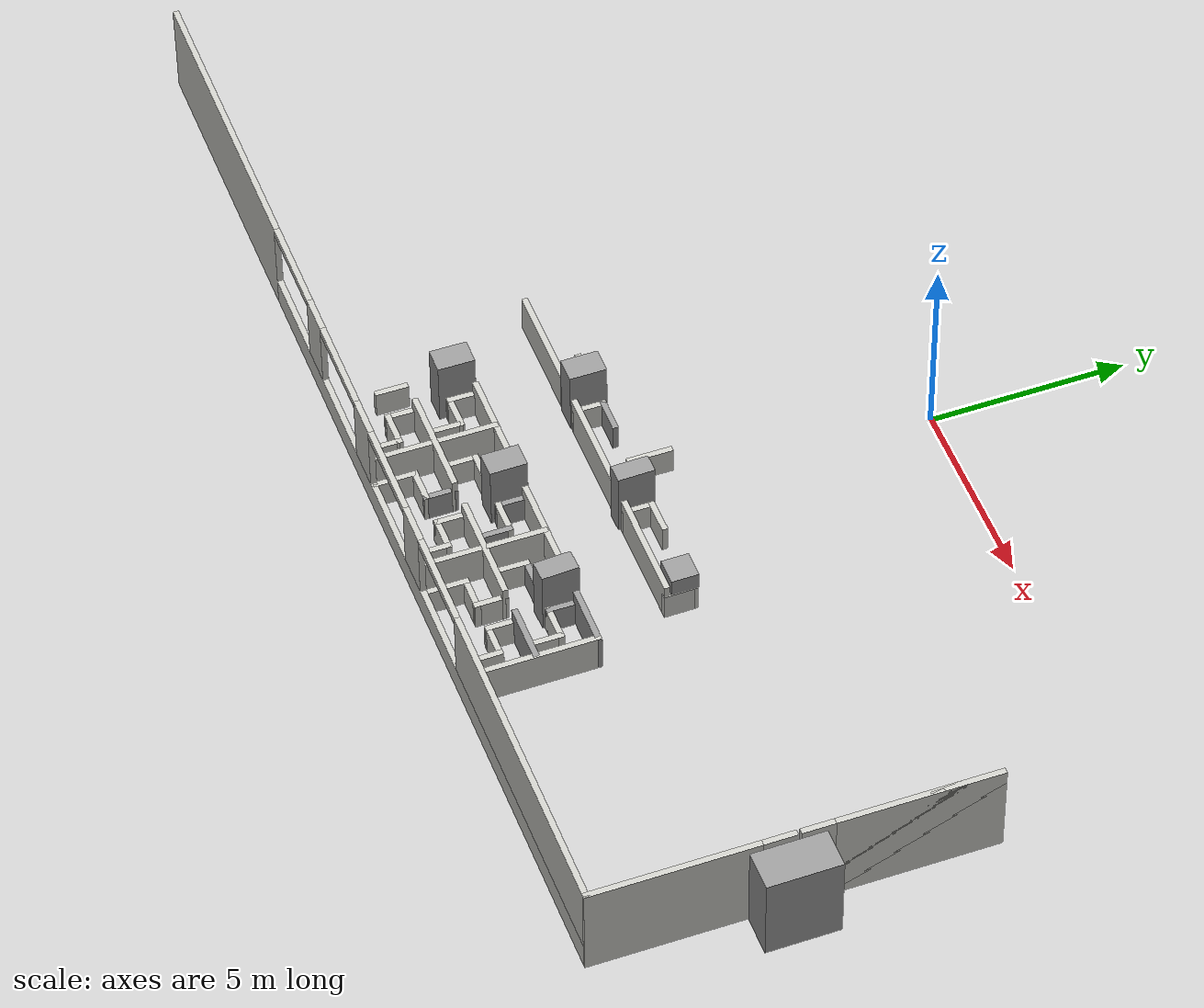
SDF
<sdf version="1.7">
 <world name="default">
  <model name="ground_plane">
   <static>1</static>
   <link name="link">
    <collision name="collision">
     <geometry><plane><normal>0 0 1</normal><size>100 100</size></plane></geometry>
     <surface><friction><ode><mu>100</mu><mu2>50</mu2></ode></friction></surface>
    </collision>
    <visual name="visual">
     <cast_shadows>0</cast_shadows>
     <geometry><plane><normal>0 0 1</normal><size>100 100</size></plane></geometry>
     <material>
      <script><uri>file://media/materials/scripts/gazebo.material</uri><name>Gazebo/Grey</name></script>
     </material>
    </visual>
   </link>
  </model>
  <model name="batclab">
   <pose>-2.42536 -0.386876 0 0 -0 0</pose>
   <link name="Wall_104">
    <collision name="Wall_104_Collision">
     <geometry><box><size>2.865 0.15 1</size></box></geometry>
     <pose>0 0 0.5 0 -0 0</pose>
    </collision>
    <visual name="Wall_104_Visual">
     <pose>0 0 0.5 0 -0 0</pose>
     <geometry><box><size>2.865 0.15 1</size></box></geometry>
     <material>
      <script><uri>file://media/materials/scripts/gazebo.material</uri><name>Gazebo/CeilingTiled</name></script>
      <ambient>1 1 1 1</ambient>
     </material>
     <meta><layer>0</layer></meta>
    </visual>
    <pose>-2.41702 -7.65761 0 0 -0 0</pose>
   </link>
   <link name="Wall_129">
    <collision name="Wall_129_Collision">
     <geometry><box><size>0.960743 0.15 0.7</size></box></geometry>
     <pose>0 0 0.35 0 -0 0</pose>
    </collision>
    <visual name="Wall_129_Visual">
     <pose>0 0 0.35 0 -0 0</pose>
     <geometry><box><size>0.960743 0.15 0.7</size></box></geometry>
     <material>
      <script><uri>file://media/materials/scripts/gazebo.material</uri><name>Gazebo/CeilingTiled</name></script>
      <ambient>1 1 1 1</ambient>
     </material>
     <meta><layer>0</layer></meta>
    </visual>
    <pose>-1.46492 -6.99011 0 0 -0 0.003699</pose>
   </link>
   <link name="Wall_130">
    <collision name="Wall_130_Collision">
     <geometry><box><size>0.819914 0.15 0.7</size></box></geometry>
     <pose>0 0 0.35 0 -0 0</pose>
    </collision>
    <visual name="Wall_130_Visual">
     <pose>0 0 0.35 0 -0 0</pose>
     <geometry><box><size>0.819914 0.15 0.7</size></box></geometry>
     <material>
      <script><uri>file://media/materials/scripts/gazebo.material</uri><name>Gazebo/CeilingTiled</name></script>
      <ambient>1 1 1 1</ambient>
     </material>
     <meta><layer>0</layer></meta>
    </visual>
    <pose>-1.05942 -7.32361 0 0 -0 -1.5708</pose>
   </link>
   <link name="Wall_162">
    <collision name="Wall_162_Collision">
     <geometry><box><size>2.865 0.15 1</size></box></geometry>
     <pose>0 0 0.5 0 -0 0</pose>
    </collision>
    <visual name="Wall_162_Visual">
     <pose>0 0 0.5 0 -0 0</pose>
     <geometry><box><size>2.865 0.15 1</size></box></geometry>
     <material>
      <script><uri>file://media/materials/scripts/gazebo.material</uri><name>Gazebo/CeilingTiled</name></script>
      <ambient>1 1 1 1</ambient>
     </material>
     <meta><layer>0</layer></meta>
    </visual>
    <pose>1.09927 -7.67229 0 0 -0 0</pose>
   </link>
   <link name="Wall_164">
    <collision name="Wall_164_Collision">
     <geometry><box><size>2.865 0.15 1</size></box></geometry>
     <pose>0 0 0.5 0 -0 0</pose>
    </collision>
    <visual name="Wall_164_Visual">
     <pose>0 0 0.5 0 -0 0</pose>
     <geometry><box><size>2.865 0.15 1</size></box></geometry>
     <material>
      <script><uri>file://media/materials/scripts/gazebo.material</uri><name>Gazebo/CeilingTiled</name></script>
      <ambient>1 1 1 1</ambient>
     </material>
     <meta><layer>0</layer></meta>
    </visual>
    <pose>4.51204 -7.67926 0 0 -0 0</pose>
   </link>
   <link name="Wall_2">
    <pose>-0.019036 -12.8991 0 0 -0 0.000904</pose>
    <visual name="Wall_2_Visual_0">
     <pose>-10.7722 0 1.25 0 -0 0</pose>
     <geometry><box><size>8.04394 0.15 2.5</size></box></geometry>
     <material>
      <script><uri>file://media/materials/scripts/gazebo.material</uri><name>Gazebo/CeilingTiled</name></script>
      <ambient>1 1 1 1</ambient>
     </material>
     <meta><layer>0</layer></meta>
    </visual>
    <collision name="Wall_2_Collision_0">
     <geometry><box><size>8.04394 0.15 2.5</size></box></geometry>
     <pose>-10.7722 0 1.25 0 -0 0</pose>
    </collision>
    <visual name="Wall_2_Visual_1">
     <pose>4.02197 0 0.35 0 -0 0</pose>
     <geometry><box><size>21.5443 0.15 0.7</size></box></geometry>
     <material>
      <script><uri>file://media/materials/scripts/gazebo.material</uri><name>Gazebo/CeilingTiled</name></script>
      <ambient>1 1 1 1</ambient>
     </material>
     <meta><layer>0</layer></meta>
    </visual>
    <collision name="Wall_2_Collision_1">
     <geometry><box><size>21.5443 0.15 0.7</size></box></geometry>
     <pose>4.02197 0 0.35 0 -0 0</pose>
    </collision>
    <visual name="Wall_2_Visual_2">
     <pose>-3.76368 0 1.6 0 -0 0</pose>
     <geometry><box><size>0.973009 0.15 1.8</size></box></geometry>
     <material>
      <script><uri>file://media/materials/scripts/gazebo.material</uri><name>Gazebo/CeilingTiled</name></script>
      <ambient>1 1 1 1</ambient>
     </material>
     <meta><layer>0</layer></meta>
    </visual>
    <collision name="Wall_2_Collision_2">
     <geometry><box><size>0.973009 0.15 1.8</size></box></geometry>
     <pose>-3.76368 0 1.6 0 -0 0</pose>
    </collision>
    <visual name="Wall_2_Visual_3">
     <pose>-0.257602 0 1.6 0 -0 0</pose>
     <geometry><box><size>1.03915 0.15 1.8</size></box></geometry>
     <material>
      <script><uri>file://media/materials/scripts/gazebo.material</uri><name>Gazebo/CeilingTiled</name></script>
      <ambient>1 1 1 1</ambient>
     </material>
     <meta><layer>0</layer></meta>
    </visual>
    <collision name="Wall_2_Collision_3">
     <geometry><box><size>1.03915 0.15 1.8</size></box></geometry>
     <pose>-0.257602 0 1.6 0 -0 0</pose>
    </collision>
    <visual name="Wall_2_Visual_4">
     <pose>3.28588 0 1.6 0 -0 0</pose>
     <geometry><box><size>1.04782 0.15 1.8</size></box></geometry>
     <material>
      <script><uri>file://media/materials/scripts/gazebo.material</uri><name>Gazebo/CeilingTiled</name></script>
      <ambient>1 1 1 1</ambient>
     </material>
     <meta><layer>0</layer></meta>
    </visual>
    <collision name="Wall_2_Collision_4">
     <geometry><box><size>1.04782 0.15 1.8</size></box></geometry>
     <pose>3.28588 0 1.6 0 -0 0</pose>
    </collision>
    <visual name="Wall_2_Visual_5">
     <pose>10.552 0 1.6 0 -0 0</pose>
     <geometry><box><size>8.48433 0.15 1.8</size></box></geometry>
     <material>
      <script><uri>file://media/materials/scripts/gazebo.material</uri><name>Gazebo/CeilingTiled</name></script>
      <ambient>1 1 1 1</ambient>
     </material>
     <meta><layer>0</layer></meta>
    </visual>
    <collision name="Wall_2_Collision_5">
     <geometry><box><size>8.48433 0.15 1.8</size></box></geometry>
     <pose>10.552 0 1.6 0 -0 0</pose>
    </collision>
    <visual name="Wall_2_Visual_6">
     <pose>-5.50019 0 2.4 0 -0 0</pose>
     <geometry><box><size>2.5 0.15 0.2</size></box></geometry>
     <material>
      <script><uri>file://media/materials/scripts/gazebo.material</uri><name>Gazebo/CeilingTiled</name></script>
      <ambient>1 1 1 1</ambient>
     </material>
     <meta><layer>0</layer></meta>
    </visual>
    <collision name="Wall_2_Collision_6">
     <geometry><box><size>2.5 0.15 0.2</size></box></geometry>
     <pose>-5.50019 0 2.4 0 -0 0</pose>
    </collision>
    <visual name="Wall_2_Visual_7">
     <pose>-2.02718 0 2.4 0 -0 0</pose>
     <geometry><box><size>2.5 0.15 0.2</size></box></geometry>
     <material>
      <script><uri>file://media/materials/scripts/gazebo.material</uri><name>Gazebo/CeilingTiled</name></script>
      <ambient>1 1 1 1</ambient>
     </material>
     <meta><layer>0</layer></meta>
    </visual>
    <collision name="Wall_2_Collision_7">
     <geometry><box><size>2.5 0.15 0.2</size></box></geometry>
     <pose>-2.02718 0 2.4 0 -0 0</pose>
    </collision>
    <visual name="Wall_2_Visual_8">
     <pose>1.51197 0 2.4 0 -0 0</pose>
     <geometry><box><size>2.5 0.15 0.2</size></box></geometry>
     <material>
      <script><uri>file://media/materials/scripts/gazebo.material</uri><name>Gazebo/CeilingTiled</name></script>
      <ambient>1 1 1 1</ambient>
     </material>
     <meta><layer>0</layer></meta>
    </visual>
    <collision name="Wall_2_Collision_8">
     <geometry><box><size>2.5 0.15 0.2</size></box></geometry>
     <pose>1.51197 0 2.4 0 -0 0</pose>
    </collision>
    <visual name="Wall_2_Visual_9">
     <pose>5.05979 0 2.4 0 -0 0</pose>
     <geometry><box><size>2.5 0.15 0.2</size></box></geometry>
     <material>
      <script><uri>file://media/materials/scripts/gazebo.material</uri><name>Gazebo/CeilingTiled</name></script>
      <ambient>1 1 1 1</ambient>
     </material>
     <meta><layer>0</layer></meta>
    </visual>
    <collision name="Wall_2_Collision_9">
     <geometry><box><size>2.5 0.15 0.2</size></box></geometry>
     <pose>5.05979 0 2.4 0 -0 0</pose>
    </collision>
   </link>
   <link name="Wall_219">
    <collision name="Wall_219_Collision">
     <geometry><box><size>0.92819 0.15 0.7</size></box></geometry>
     <pose>0 0 0.35 0 -0 0</pose>
    </collision>
    <visual name="Wall_219_Visual">
     <pose>0 0 0.35 0 -0 0</pose>
     <geometry><box><size>0.92819 0.15 0.7</size></box></geometry>
     <material>
      <script><uri>file://media/materials/scripts/gazebo.material</uri><name>Gazebo/Grey</name></script>
      <ambient>1 1 1 1</ambient>
     </material>
     <meta><layer>0</layer></meta>
    </visual>
    <pose>0.13958 -6.96361 0 0 -0 3.13645</pose>
   </link>
   <link name="Wall_220">
    <collision name="Wall_220_Collision">
     <geometry><box><size>0.860758 0.15 0.7</size></box></geometry>
     <pose>0 0 0.35 0 -0 0</pose>
    </collision>
    <visual name="Wall_220_Visual">
     <pose>0 0 0.35 0 -0 0</pose>
     <geometry><box><size>0.860758 0.15 0.7</size></box></geometry>
     <material>
      <script><uri>file://media/materials/scripts/gazebo.material</uri><name>Gazebo/CeilingTiled</name></script>
      <ambient>1 1 1 1</ambient>
     </material>
     <meta><layer>0</layer></meta>
    </visual>
    <pose>-0.25142 -7.31711 0 0 -0 -1.57642</pose>
   </link>
   <link name="Wall_222">
    <collision name="Wall_222_Collision">
     <geometry><box><size>1.14201 0.15 0.7</size></box></geometry>
     <pose>0 0 0.35 0 -0 0</pose>
    </collision>
    <visual name="Wall_222_Visual">
     <pose>0 0 0.35 0 -0 0</pose>
     <geometry><box><size>1.14201 0.15 0.7</size></box></geometry>
     <material>
      <script><uri>file://media/materials/scripts/gazebo.material</uri><name>Gazebo/CeilingTiled</name></script>
      <ambient>1 1 1 1</ambient>
     </material>
     <meta><layer>0</layer></meta>
    </visual>
    <pose>1.68458 -6.51461 0 0 -0 -1.57483</pose>
   </link>
   <link name="Wall_223">
    <collision name="Wall_223_Collision">
     <geometry><box><size>0.95454 0.15 0.7</size></box></geometry>
     <pose>0 0 0.35 0 -0 0</pose>
    </collision>
    <visual name="Wall_223_Visual">
     <pose>0 0 0.35 0 -0 0</pose>
     <geometry><box><size>0.95454 0.15 0.7</size></box></geometry>
     <material>
      <script><uri>file://media/materials/scripts/gazebo.material</uri><name>Gazebo/CeilingTiled</name></script>
      <ambient>1 1 1 1</ambient>
     </material>
     <meta><layer>0</layer></meta>
    </visual>
    <pose>2.08508 -7.01261 0 0 -0 -0.004969</pose>
   </link>
   <link name="Wall_224">
    <collision name="Wall_224_Collision">
     <geometry><box><size>0.81161 0.15 0.7</size></box></geometry>
     <pose>0 0 0.35 0 -0 0</pose>
    </collision>
    <visual name="Wall_224_Visual">
     <pose>0 0 0.35 0 -0 0</pose>
     <geometry><box><size>0.81161 0.15 0.7</size></box></geometry>
     <material>
      <script><uri>file://media/materials/scripts/gazebo.material</uri><name>Gazebo/CeilingTiled</name></script>
      <ambient>1 1 1 1</ambient>
     </material>
     <meta><layer>0</layer></meta>
    </visual>
    <pose>2.48158 -7.34561 0 0 -0 -1.58892</pose>
   </link>
   <link name="Wall_227">
    <collision name="Wall_227_Collision">
     <geometry><box><size>0.924439 0.15 0.7</size></box></geometry>
     <pose>0 0 0.35 0 -0 0</pose>
    </collision>
    <visual name="Wall_227_Visual">
     <pose>0 0 0.35 0 -0 0</pose>
     <geometry><box><size>0.924439 0.15 0.7</size></box></geometry>
     <material>
      <script><uri>file://media/materials/scripts/gazebo.material</uri><name>Gazebo/CeilingTiled</name></script>
      <ambient>1 1 1 1</ambient>
     </material>
     <meta><layer>0</layer></meta>
    </visual>
    <pose>3.53958 -6.99911 0 0 -0 -3.13255</pose>
   </link>
   <link name="Wall_228">
    <collision name="Wall_228_Collision">
     <geometry><box><size>0.827113 0.15 0.7</size></box></geometry>
     <pose>0 0 0.35 0 -0 0</pose>
    </collision>
    <visual name="Wall_228_Visual">
     <pose>0 0 0.35 0 -0 0</pose>
     <geometry><box><size>0.827113 0.15 0.7</size></box></geometry>
     <material>
      <script><uri>file://media/materials/scripts/gazebo.material</uri><name>Gazebo/CeilingTiled</name></script>
      <ambient>1 1 1 1</ambient>
     </material>
     <meta><layer>0</layer></meta>
    </visual>
    <pose>3.15458 -7.34111 0 0 -0 -1.56489</pose>
   </link>
   <link name="Wall_231">
    <collision name="Wall_231_Collision">
     <geometry><box><size>0.954505 0.15 0.7</size></box></geometry>
     <pose>0 0 0.35 0 -0 0</pose>
    </collision>
    <visual name="Wall_231_Visual">
     <pose>0 0 0.35 0 -0 0</pose>
     <geometry><box><size>0.954505 0.15 0.7</size></box></geometry>
     <material>
      <script><uri>file://media/materials/scripts/gazebo.material</uri><name>Gazebo/CeilingTiled</name></script>
      <ambient>1 1 1 1</ambient>
     </material>
     <meta><layer>0</layer></meta>
    </visual>
    <pose>5.47958 -6.98761 0 0 -0 0</pose>
   </link>
   <link name="Wall_233">
    <collision name="Wall_233_Collision">
     <geometry><box><size>0.845575 0.15 0.7</size></box></geometry>
     <pose>0 0 0.35 0 -0 0</pose>
    </collision>
    <visual name="Wall_233_Visual">
     <pose>0 0 0.35 0 -0 0</pose>
     <geometry><box><size>0.845575 0.15 0.7</size></box></geometry>
     <material>
      <script><uri>file://media/materials/scripts/gazebo.material</uri><name>Gazebo/CeilingTiled</name></script>
      <ambient>1 1 1 1</ambient>
     </material>
     <meta><layer>0</layer></meta>
    </visual>
    <pose>5.88558 -7.33561 0 0 -0 -1.5593</pose>
   </link>
   <link name="Wall_3">
    <pose>14.7278 -7.97302 0 0 -0 1.5687</pose>
    <visual name="Wall_3_Visual_0">
     <pose>-2.88972 0 1.25 0 -0 0</pose>
     <geometry><box><size>4.19615 0.15 2.5</size></box></geometry>
     <material>
      <script><uri>file://media/materials/scripts/gazebo.material</uri><name>Gazebo/CeilingTiled</name></script>
      <ambient>1 1 1 1</ambient>
     </material>
     <meta><layer>0</layer></meta>
    </visual>
    <collision name="Wall_3_Collision_0">
     <geometry><box><size>4.19615 0.15 2.5</size></box></geometry>
     <pose>-2.88972 0 1.25 0 -0 0</pose>
    </collision>
    <visual name="Wall_3_Visual_1">
     <pose>2.54808 0 1.25 0 -0 0</pose>
     <geometry><box><size>4.87945 0.15 2.5</size></box></geometry>
     <material>
      <script><uri>file://media/materials/scripts/gazebo.material</uri><name>Gazebo/CeilingTiled</name></script>
      <ambient>1 1 1 1</ambient>
     </material>
     <meta><layer>0</layer></meta>
    </visual>
    <collision name="Wall_3_Collision_1">
     <geometry><box><size>4.87945 0.15 2.5</size></box></geometry>
     <pose>2.54808 0 1.25 0 -0 0</pose>
    </collision>
    <visual name="Wall_3_Visual_2">
     <pose>2.95765 0 1.25 0 -0 0</pose>
     <geometry><box><size>4.06029 0.15 2.5</size></box></geometry>
     <material>
      <script><uri>file://media/materials/scripts/gazebo.material</uri><name>Gazebo/CeilingTiled</name></script>
      <ambient>1 1 1 1</ambient>
     </material>
     <meta><layer>0</layer></meta>
    </visual>
    <collision name="Wall_3_Collision_2">
     <geometry><box><size>4.06029 0.15 2.5</size></box></geometry>
     <pose>2.95765 0 1.25 0 -0 0</pose>
    </collision>
    <visual name="Wall_3_Visual_3">
     <pose>-0.382072 0 2.25 0 -0 0</pose>
     <geometry><box><size>0.819154 0.15 0.5</size></box></geometry>
     <material>
      <script><uri>file://media/materials/scripts/gazebo.material</uri><name>Gazebo/CeilingTiled</name></script>
      <ambient>1 1 1 1</ambient>
     </material>
     <meta><layer>0</layer></meta>
    </visual>
    <collision name="Wall_3_Collision_3">
     <geometry><box><size>0.819154 0.15 0.5</size></box></geometry>
     <pose>-0.382072 0 2.25 0 -0 0</pose>
    </collision>
   </link>
   <link name="Wall_354">
    <collision name="Wall_354_Collision">
     <geometry><box><size>2.865 0.15 1</size></box></geometry>
     <pose>0 0 0.5 0 -0 0</pose>
    </collision>
    <visual name="Wall_354_Visual">
     <pose>0 0 0.5 0 -0 0</pose>
     <geometry><box><size>2.865 0.15 1</size></box></geometry>
     <material>
      <script><uri>file://media/materials/scripts/gazebo.material</uri><name>Gazebo/CeilingTiled</name></script>
      <ambient>1 1 1 1</ambient>
     </material>
     <meta><layer>0</layer></meta>
    </visual>
    <pose>-0.26892 -9.67561 0 0 -0 0</pose>
   </link>
   <link name="Wall_356">
    <collision name="Wall_356_Collision">
     <geometry><box><size>2.865 0.15 1</size></box></geometry>
     <pose>0 0 0.5 0 -0 0</pose>
    </collision>
    <visual name="Wall_356_Visual">
     <pose>0 0 0.5 0 -0 0</pose>
     <geometry><box><size>2.865 0.15 1</size></box></geometry>
     <material>
      <script><uri>file://media/materials/scripts/gazebo.material</uri><name>Gazebo/CeilingTiled</name></script>
      <ambient>1 1 1 1</ambient>
     </material>
     <meta><layer>0</layer></meta>
    </visual>
    <pose>-0.27292 -11.1946 0 0 -0 0.00221</pose>
   </link>
   <link name="Wall_358">
    <collision name="Wall_358_Collision">
     <geometry><box><size>2.86298 0.15 1</size></box></geometry>
     <pose>0 0 0.5 0 -0 0</pose>
    </collision>
    <visual name="Wall_358_Visual">
     <pose>0 0 0.5 0 -0 0</pose>
     <geometry><box><size>2.86298 0.15 1</size></box></geometry>
     <material>
      <script><uri>file://media/materials/scripts/gazebo.material</uri><name>Gazebo/CeilingTiled</name></script>
      <ambient>1 1 1 1</ambient>
     </material>
     <meta><layer>0</layer></meta>
    </visual>
    <pose>3.26308 -9.68661 0 0 -0 0</pose>
   </link>
   <link name="Wall_360">
    <collision name="Wall_360_Collision">
     <geometry><box><size>2.865 0.15 1</size></box></geometry>
     <pose>0 0 0.5 0 -0 0</pose>
    </collision>
    <visual name="Wall_360_Visual">
     <pose>0 0 0.5 0 -0 0</pose>
     <geometry><box><size>2.865 0.15 1</size></box></geometry>
     <material>
      <script><uri>file://media/materials/scripts/gazebo.material</uri><name>Gazebo/CeilingTiled</name></script>
      <ambient>1 1 1 1</ambient>
     </material>
     <meta><layer>0</layer></meta>
    </visual>
    <pose>3.26608 -11.1956 0 0 -0 0</pose>
   </link>
   <link name="Wall_362">
    <collision name="Wall_362_Collision">
     <geometry><box><size>1.5634 0.15 1</size></box></geometry>
     <pose>0 0 0.5 0 -0 0</pose>
    </collision>
    <visual name="Wall_362_Visual">
     <pose>0 0 0.5 0 -0 0</pose>
     <geometry><box><size>1.5634 0.15 1</size></box></geometry>
     <material>
      <script><uri>file://media/materials/scripts/gazebo.material</uri><name>Gazebo/Grey</name></script>
      <ambient>1 1 1 1</ambient>
     </material>
     <meta><layer>0</layer></meta>
    </visual>
    <pose>6.06208 -9.67811 0 0 -0 -0.003539</pose>
   </link>
   <link name="Wall_364">
    <collision name="Wall_364_Collision">
     <geometry><box><size>1.5 0.15 1</size></box></geometry>
     <pose>0 0 0.5 0 -0 0</pose>
    </collision>
    <visual name="Wall_364_Visual">
     <pose>0 0 0.5 0 -0 0</pose>
     <geometry><box><size>1.5 0.15 1</size></box></geometry>
     <material>
      <script><uri>file://media/materials/scripts/gazebo.material</uri><name>Gazebo/Grey</name></script>
      <ambient>1 1 1 1</ambient>
     </material>
     <meta><layer>0</layer></meta>
    </visual>
    <pose>6.05658 -11.1906 0 0 -0 0</pose>
   </link>
   <link name="Wall_366">
    <collision name="Wall_366_Collision">
     <geometry><box><size>3.25 0.15 1</size></box></geometry>
     <pose>0 0 0.5 0 -0 0</pose>
    </collision>
    <visual name="Wall_366_Visual">
     <pose>0 0 0.5 0 -0 0</pose>
     <geometry><box><size>3.25 0.15 1</size></box></geometry>
     <material>
      <script><uri>file://media/materials/scripts/gazebo.material</uri><name>Gazebo/CeilingTiled</name></script>
      <ambient>1 1 1 1</ambient>
     </material>
     <meta><layer>0</layer></meta>
    </visual>
    <pose>-0.24042 -11.2436 0 0 -0 -1.5708</pose>
   </link>
   <link name="Wall_368">
    <collision name="Wall_368_Collision">
     <geometry><box><size>3.25 0.15 1</size></box></geometry>
     <pose>0 0 0.5 0 -0 0</pose>
    </collision>
    <visual name="Wall_368_Visual">
     <pose>0 0 0.5 0 -0 0</pose>
     <geometry><box><size>3.25 0.15 1</size></box></geometry>
     <material>
      <script><uri>file://media/materials/scripts/gazebo.material</uri><name>Gazebo/CeilingTiled</name></script>
      <ambient>1 1 1 1</ambient>
     </material>
     <meta><layer>0</layer></meta>
    </visual>
    <pose>3.27258 -11.2606 0 0 -0 -1.5708</pose>
   </link>
   <link name="Wall_370">
    <collision name="Wall_370_Collision">
     <geometry><box><size>3.26203 0.15 1</size></box></geometry>
     <pose>0 0 0.5 0 -0 0</pose>
    </collision>
    <visual name="Wall_370_Visual">
     <pose>0 0 0.5 0 -0 0</pose>
     <geometry><box><size>3.26203 0.15 1</size></box></geometry>
     <material>
      <script><uri>file://media/materials/scripts/gazebo.material</uri><name>Gazebo/CeilingTiled</name></script>
      <ambient>1 1 1 1</ambient>
     </material>
     <meta><layer>0</layer></meta>
    </visual>
    <pose>6.77408 -11.2366 0 0 -0 -1.56726</pose>
   </link>
   <link name="Wall_378">
    <collision name="Wall_378_Collision">
     <geometry><box><size>0.808409 0.15 0.7</size></box></geometry>
     <pose>0 0 0.35 0 -0 0</pose>
    </collision>
    <visual name="Wall_378_Visual">
     <pose>0 0 0.35 0 -0 0</pose>
     <geometry><box><size>0.808409 0.15 0.7</size></box></geometry>
     <material>
      <script><uri>file://media/materials/scripts/gazebo.material</uri><name>Gazebo/CeilingTiled</name></script>
      <ambient>1 1 1 1</ambient>
     </material>
     <meta><layer>0</layer></meta>
    </visual>
    <pose>-2.43792 -10.0181 0 0 -0 -1.57535</pose>
   </link>
   <link name="Wall_386">
    <collision name="Wall_386_Collision">
     <geometry><box><size>0.835561 0.15 0.7</size></box></geometry>
     <pose>0 0 0.35 0 -0 0</pose>
    </collision>
    <visual name="Wall_386_Visual">
     <pose>0 0 0.35 0 -0 0</pose>
     <geometry><box><size>0.835561 0.15 0.7</size></box></geometry>
     <material>
      <script><uri>file://media/materials/scripts/gazebo.material</uri><name>Gazebo/CeilingTiled</name></script>
      <ambient>1 1 1 1</ambient>
     </material>
     <meta><layer>0</layer></meta>
    </visual>
    <pose>-2.44642 -11.5396 0 0 -0 -1.5708</pose>
   </link>
   <link name="Wall_390">
    <collision name="Wall_390_Collision">
     <geometry><box><size>0.82309 0.15 0.7</size></box></geometry>
     <pose>0 0 0.35 0 -0 0</pose>
    </collision>
    <visual name="Wall_390_Visual">
     <pose>0 0 0.35 0 -0 0</pose>
     <geometry><box><size>0.82309 0.15 0.7</size></box></geometry>
     <material>
      <script><uri>file://media/materials/scripts/gazebo.material</uri><name>Gazebo/CeilingTiled</name></script>
      <ambient>1 1 1 1</ambient>
     </material>
     <meta><layer>0</layer></meta>
    </visual>
    <pose>-1.63192 -10.0121 0 0 -0 -1.58714</pose>
   </link>
   <link name="Wall_391">
    <collision name="Wall_391_Collision">
     <geometry><box><size>0.965559 0.15 0.7</size></box></geometry>
     <pose>0 0 0.35 0 -0 0</pose>
    </collision>
    <visual name="Wall_391_Visual">
     <pose>0 0 0.35 0 -0 0</pose>
     <geometry><box><size>0.965559 0.15 0.7</size></box></geometry>
     <material>
      <script><uri>file://media/materials/scripts/gazebo.material</uri><name>Gazebo/CeilingTiled</name></script>
      <ambient>1 1 1 1</ambient>
     </material>
     <meta><layer>0</layer></meta>
    </visual>
    <pose>-1.22992 -10.3481 0 0 -0 0.001227</pose>
   </link>
   <link name="Wall_392">
    <collision name="Wall_392_Collision">
     <geometry><box><size>0.904765 0.15 0.7</size></box></geometry>
     <pose>0 0 0.35 0 -0 0</pose>
    </collision>
    <visual name="Wall_392_Visual">
     <pose>0 0 0.35 0 -0 0</pose>
     <geometry><box><size>0.904765 0.15 0.7</size></box></geometry>
     <material>
      <script><uri>file://media/materials/scripts/gazebo.material</uri><name>Gazebo/CeilingTiled</name></script>
      <ambient>1 1 1 1</ambient>
     </material>
     <meta><layer>0</layer></meta>
    </visual>
    <pose>-0.82542 -10.7251 0 0 -0 -1.57874</pose>
   </link>
   <link name="Wall_394">
    <collision name="Wall_394_Collision">
     <geometry><box><size>0.850461 0.15 0.7</size></box></geometry>
     <pose>0 0 0.35 0 -0 0</pose>
    </collision>
    <visual name="Wall_394_Visual">
     <pose>0 0 0.35 0 -0 0</pose>
     <geometry><box><size>0.850461 0.15 0.7</size></box></geometry>
     <material>
      <script><uri>file://media/materials/scripts/gazebo.material</uri><name>Gazebo/CeilingTiled</name></script>
      <ambient>1 1 1 1</ambient>
     </material>
     <meta><layer>0</layer></meta>
    </visual>
    <pose>-1.63392 -11.5476 0 0 -0 -1.5808</pose>
   </link>
   <link name="Wall_395">
    <collision name="Wall_395_Collision">
     <geometry><box><size>0.971895 0.15 0.7</size></box></geometry>
     <pose>0 0 0.35 0 -0 0</pose>
    </collision>
    <visual name="Wall_395_Visual">
     <pose>0 0 0.35 0 -0 0</pose>
     <geometry><box><size>0.971895 0.15 0.7</size></box></geometry>
     <material>
      <script><uri>file://media/materials/scripts/gazebo.material</uri><name>Gazebo/CeilingTiled</name></script>
      <ambient>1 1 1 1</ambient>
     </material>
     <meta><layer>0</layer></meta>
    </visual>
    <pose>-1.22642 -11.8976 0 0 -0 0</pose>
   </link>
   <link name="Wall_396">
    <collision name="Wall_396_Collision">
     <geometry><box><size>1.06397 0.15 0.7</size></box></geometry>
     <pose>0 0 0.35 0 -0 0</pose>
    </collision>
    <visual name="Wall_396_Visual">
     <pose>0 0 0.35 0 -0 0</pose>
     <geometry><box><size>1.06397 0.15 0.7</size></box></geometry>
     <material>
      <script><uri>file://media/materials/scripts/gazebo.material</uri><name>Gazebo/CeilingTiled</name></script>
      <ambient>1 1 1 1</ambient>
     </material>
     <meta><layer>0</layer></meta>
    </visual>
    <pose>-0.81892 -12.3546 0 0 -0 -1.57845</pose>
   </link>
   <link name="Wall_398">
    <collision name="Wall_398_Collision">
     <geometry><box><size>0.853385 0.15 0.7</size></box></geometry>
     <pose>0 0 0.35 0 -0 0</pose>
    </collision>
    <visual name="Wall_398_Visual">
     <pose>0 0 0.35 0 -0 0</pose>
     <geometry><box><size>0.853385 0.15 0.7</size></box></geometry>
     <material>
      <script><uri>file://media/materials/scripts/gazebo.material</uri><name>Gazebo/Grey</name></script>
      <ambient>1 1 1 1</ambient>
     </material>
     <meta><layer>0</layer></meta>
    </visual>
    <pose>1.09008 -10.0271 0 0 -0 -1.56653</pose>
   </link>
   <link name="Wall_399">
    <collision name="Wall_399_Collision">
     <geometry><box><size>0.939129 0.15 0.7</size></box></geometry>
     <pose>0 0 0.35 0 -0 0</pose>
    </collision>
    <visual name="Wall_399_Visual">
     <pose>0 0 0.35 0 -0 0</pose>
     <geometry><box><size>0.939129 0.15 0.7</size></box></geometry>
     <material>
      <script><uri>file://media/materials/scripts/gazebo.material</uri><name>Gazebo/CeilingTiled</name></script>
      <ambient>1 1 1 1</ambient>
     </material>
     <meta><layer>0</layer></meta>
    </visual>
    <pose>0.69658 -10.3786 0 0 -0 3.14159</pose>
   </link>
   <link name="Wall_400">
    <collision name="Wall_400_Collision">
     <geometry><box><size>0.893022 0.15 0.7</size></box></geometry>
     <pose>0 0 0.35 0 -0 0</pose>
    </collision>
    <visual name="Wall_400_Visual">
     <pose>0 0 0.35 0 -0 0</pose>
     <geometry><box><size>0.893022 0.15 0.7</size></box></geometry>
     <material>
      <script><uri>file://media/materials/scripts/gazebo.material</uri><name>Gazebo/CeilingTiled</name></script>
      <ambient>1 1 1 1</ambient>
     </material>
     <meta><layer>0</layer></meta>
    </visual>
    <pose>0.30508 -10.7501 0 0 -0 -1.56137</pose>
   </link>
   <link name="Wall_402">
    <collision name="Wall_402_Collision">
     <geometry><box><size>0.844103 0.15 0.7</size></box></geometry>
     <pose>0 0 0.35 0 -0 0</pose>
    </collision>
    <visual name="Wall_402_Visual">
     <pose>0 0 0.35 0 -0 0</pose>
     <geometry><box><size>0.844103 0.15 0.7</size></box></geometry>
     <material>
      <script><uri>file://media/materials/scripts/gazebo.material</uri><name>Gazebo/Grey</name></script>
      <ambient>1 1 1 1</ambient>
     </material>
     <meta><layer>0</layer></meta>
    </visual>
    <pose>1.08458 -11.5386 0 0 -0 -1.5708</pose>
   </link>
   <link name="Wall_403">
    <collision name="Wall_403_Collision">
     <geometry><box><size>0.95217 0.15 0.7</size></box></geometry>
     <pose>0 0 0.35 0 -0 0</pose>
    </collision>
    <visual name="Wall_403_Visual">
     <pose>0 0 0.35 0 -0 0</pose>
     <geometry><box><size>0.95217 0.15 0.7</size></box></geometry>
     <material>
      <script><uri>file://media/materials/scripts/gazebo.material</uri><name>Gazebo/CeilingTiled</name></script>
      <ambient>1 1 1 1</ambient>
     </material>
     <meta><layer>0</layer></meta>
    </visual>
    <pose>0.68358 -11.8871 0 0 -0 -3.13785</pose>
   </link>
   <link name="Wall_404">
    <collision name="Wall_404_Collision">
     <geometry><box><size>1.1201 0.15 0.7</size></box></geometry>
     <pose>0 0 0.35 0 -0 0</pose>
    </collision>
    <visual name="Wall_404_Visual">
     <pose>0 0 0.35 0 -0 0</pose>
     <geometry><box><size>1.1201 0.15 0.7</size></box></geometry>
     <material>
      <script><uri>file://media/materials/scripts/gazebo.material</uri><name>Gazebo/CeilingTiled</name></script>
      <ambient>1 1 1 1</ambient>
     </material>
     <meta><layer>0</layer></meta>
    </visual>
    <pose>0.28558 -12.3736 0 0 -0 -1.56461</pose>
   </link>
   <link name="Wall_406">
    <collision name="Wall_406_Collision">
     <geometry><box><size>0.840213 0.15 0.7</size></box></geometry>
     <pose>0 0 0.35 0 -0 0</pose>
    </collision>
    <visual name="Wall_406_Visual">
     <pose>0 0 0.35 0 -0 0</pose>
     <geometry><box><size>0.840213 0.15 0.7</size></box></geometry>
     <material>
      <script><uri>file://media/materials/scripts/gazebo.material</uri><name>Gazebo/Grey</name></script>
      <ambient>1 1 1 1</ambient>
     </material>
     <meta><layer>0</layer></meta>
    </visual>
    <pose>1.90558 -10.0316 0 0 -0 -1.5737</pose>
   </link>
   <link name="Wall_407">
    <collision name="Wall_407_Collision">
     <geometry><box><size>0.933506 0.15 0.7</size></box></geometry>
     <pose>0 0 0.35 0 -0 0</pose>
    </collision>
    <visual name="Wall_407_Visual">
     <pose>0 0 0.35 0 -0 0</pose>
     <geometry><box><size>0.933506 0.15 0.7</size></box></geometry>
     <material>
      <script><uri>file://media/materials/scripts/gazebo.material</uri><name>Gazebo/CeilingTiled</name></script>
      <ambient>1 1 1 1</ambient>
     </material>
     <meta><layer>0</layer></meta>
    </visual>
    <pose>2.29608 -10.3766 0 0 -0 0</pose>
   </link>
   <link name="Wall_408">
    <collision name="Wall_408_Collision">
     <geometry><box><size>0.92819 0.15 0.7</size></box></geometry>
     <pose>0 0 0.35 0 -0 0</pose>
    </collision>
    <visual name="Wall_408_Visual">
     <pose>0 0 0.35 0 -0 0</pose>
     <geometry><box><size>0.92819 0.15 0.7</size></box></geometry>
     <material>
      <script><uri>file://media/materials/scripts/gazebo.material</uri><name>Gazebo/Grey</name></script>
      <ambient>1 1 1 1</ambient>
     </material>
     <meta><layer>0</layer></meta>
    </visual>
    <pose>2.68758 -10.7656 0 0 -0 -1.5708</pose>
   </link>
   <link name="Wall_410">
    <collision name="Wall_410_Collision">
     <geometry><box><size>0.847699 0.15 0.7</size></box></geometry>
     <pose>0 0 0.35 0 -0 0</pose>
    </collision>
    <visual name="Wall_410_Visual">
     <pose>0 0 0.35 0 -0 0</pose>
     <geometry><box><size>0.847699 0.15 0.7</size></box></geometry>
     <material>
      <script><uri>file://media/materials/scripts/gazebo.material</uri><name>Gazebo/CeilingTiled</name></script>
      <ambient>1 1 1 1</ambient>
     </material>
     <meta><layer>0</layer></meta>
    </visual>
    <pose>1.90708 -11.5446 0 0 -0 -1.57509</pose>
   </link>
   <link name="Wall_411">
    <collision name="Wall_411_Collision">
     <geometry><box><size>0.919555 0.15 0.7</size></box></geometry>
     <pose>0 0 0.35 0 -0 0</pose>
    </collision>
    <visual name="Wall_411_Visual">
     <pose>0 0 0.35 0 -0 0</pose>
     <geometry><box><size>0.919555 0.15 0.7</size></box></geometry>
     <material>
      <script><uri>file://media/materials/scripts/gazebo.material</uri><name>Gazebo/CeilingTiled</name></script>
      <ambient>1 1 1 1</ambient>
     </material>
     <meta><layer>0</layer></meta>
    </visual>
    <pose>2.29008 -11.8931 0 0 -0 0.0013</pose>
   </link>
   <link name="Wall_412">
    <collision name="Wall_412_Collision">
     <geometry><box><size>1.00032 0.15 0.7</size></box></geometry>
     <pose>0 0 0.35 0 -0 0</pose>
    </collision>
    <visual name="Wall_412_Visual">
     <pose>0 0 0.35 0 -0 0</pose>
     <geometry><box><size>1.00032 0.15 0.7</size></box></geometry>
     <material>
      <script><uri>file://media/materials/scripts/gazebo.material</uri><name>Gazebo/CeilingTiled</name></script>
      <ambient>1 1 1 1</ambient>
     </material>
     <meta><layer>0</layer></meta>
    </visual>
    <pose>2.67458 -12.3176 0 0 -0 -1.5708</pose>
   </link>
   <link name="Wall_414">
    <collision name="Wall_414_Collision">
     <geometry><box><size>0.830207 0.15 0.7</size></box></geometry>
     <pose>0 0 0.35 0 -0 0</pose>
    </collision>
    <visual name="Wall_414_Visual">
     <pose>0 0 0.35 0 -0 0</pose>
     <geometry><box><size>0.830207 0.15 0.7</size></box></geometry>
     <material>
      <script><uri>file://media/materials/scripts/gazebo.material</uri><name>Gazebo/CeilingTiled</name></script>
      <ambient>1 1 1 1</ambient>
     </material>
     <meta><layer>0</layer></meta>
    </visual>
    <pose>4.61908 -10.0266 0 0 -0 -1.57227</pose>
   </link>
   <link name="Wall_415">
    <collision name="Wall_415_Collision">
     <geometry><box><size>0.950941 0.15 0.7</size></box></geometry>
     <pose>0 0 0.35 0 -0 0</pose>
    </collision>
    <visual name="Wall_415_Visual">
     <pose>0 0 0.35 0 -0 0</pose>
     <geometry><box><size>0.950941 0.15 0.7</size></box></geometry>
     <material>
      <script><uri>file://media/materials/scripts/gazebo.material</uri><name>Gazebo/Grey</name></script>
      <ambient>1 1 1 1</ambient>
     </material>
     <meta><layer>0</layer></meta>
    </visual>
    <pose>4.21808 -10.3661 0 0 -0 3.14034</pose>
   </link>
   <link name="Wall_416">
    <collision name="Wall_416_Collision">
     <geometry><box><size>0.909016 0.15 0.7</size></box></geometry>
     <pose>0 0 0.35 0 -0 0</pose>
    </collision>
    <visual name="Wall_416_Visual">
     <pose>0 0 0.35 0 -0 0</pose>
     <geometry><box><size>0.909016 0.15 0.7</size></box></geometry>
     <material>
      <script><uri>file://media/materials/scripts/gazebo.material</uri><name>Gazebo/CeilingTiled</name></script>
      <ambient>1 1 1 1</ambient>
     </material>
     <meta><layer>0</layer></meta>
    </visual>
    <pose>3.81508 -10.7451 0 0 -0 -1.57738</pose>
   </link>
   <link name="Wall_418">
    <collision name="Wall_418_Collision">
     <geometry><box><size>0.828009 0.15 0.7</size></box></geometry>
     <pose>0 0 0.35 0 -0 0</pose>
    </collision>
    <visual name="Wall_418_Visual">
     <pose>0 0 0.35 0 -0 0</pose>
     <geometry><box><size>0.828009 0.15 0.7</size></box></geometry>
     <material>
      <script><uri>file://media/materials/scripts/gazebo.material</uri><name>Gazebo/CeilingTiled</name></script>
      <ambient>1 1 1 1</ambient>
     </material>
     <meta><layer>0</layer></meta>
    </visual>
    <pose>4.62308 -11.5346 0 0 -0 -1.57227</pose>
   </link>
   <link name="Wall_419">
    <collision name="Wall_419_Collision">
     <geometry><box><size>0.918255 0.15 0.7</size></box></geometry>
     <pose>0 0 0.35 0 -0 0</pose>
    </collision>
    <visual name="Wall_419_Visual">
     <pose>0 0 0.35 0 -0 0</pose>
     <geometry><box><size>0.918255 0.15 0.7</size></box></geometry>
     <material>
      <script><uri>file://media/materials/scripts/gazebo.material</uri><name>Gazebo/CeilingTiled</name></script>
      <ambient>1 1 1 1</ambient>
     </material>
     <meta><layer>0</layer></meta>
    </visual>
    <pose>4.23858 -11.8726 0 0 -0 3.13899</pose>
   </link>
   <link name="Wall_420">
    <collision name="Wall_420_Collision">
     <geometry><box><size>1.0572 0.15 0.7</size></box></geometry>
     <pose>0 0 0.35 0 -0 0</pose>
    </collision>
    <visual name="Wall_420_Visual">
     <pose>0 0 0.35 0 -0 0</pose>
     <geometry><box><size>1.0572 0.15 0.7</size></box></geometry>
     <material>
      <script><uri>file://media/materials/scripts/gazebo.material</uri><name>Gazebo/CeilingTiled</name></script>
      <ambient>1 1 1 1</ambient>
     </material>
     <meta><layer>0</layer></meta>
    </visual>
    <pose>3.85308 -12.3251 0 0 -0 -1.5741</pose>
   </link>
   <link name="Wall_422">
    <collision name="Wall_422_Collision">
     <geometry><box><size>0.84556 0.15 0.7</size></box></geometry>
     <pose>0 0 0.35 0 -0 0</pose>
    </collision>
    <visual name="Wall_422_Visual">
     <pose>0 0 0.35 0 -0 0</pose>
     <geometry><box><size>0.84556 0.15 0.7</size></box></geometry>
     <material>
      <script><uri>file://media/materials/scripts/gazebo.material</uri><name>Gazebo/Grey</name></script>
      <ambient>1 1 1 1</ambient>
     </material>
     <meta><layer>0</layer></meta>
    </visual>
    <pose>5.35308 -10.0236 0 0 -0 -1.57798</pose>
   </link>
   <link name="Wall_423">
    <collision name="Wall_423_Collision">
     <geometry><box><size>0.967607 0.15 0.7</size></box></geometry>
     <pose>0 0 0.35 0 -0 0</pose>
    </collision>
    <visual name="Wall_423_Visual">
     <pose>0 0 0.35 0 -0 0</pose>
     <geometry><box><size>0.967607 0.15 0.7</size></box></geometry>
     <material>
      <script><uri>file://media/materials/scripts/gazebo.material</uri><name>Gazebo/CeilingTiled</name></script>
      <ambient>1 1 1 1</ambient>
     </material>
     <meta><layer>0</layer></meta>
    </visual>
    <pose>5.75908 -10.3716 0 0 -0 0</pose>
   </link>
   <link name="Wall_424">
    <collision name="Wall_424_Collision">
     <geometry><box><size>0.910432 0.15 0.7</size></box></geometry>
     <pose>0 0 0.35 0 -0 0</pose>
    </collision>
    <visual name="Wall_424_Visual">
     <pose>0 0 0.35 0 -0 0</pose>
     <geometry><box><size>0.910432 0.15 0.7</size></box></geometry>
     <material>
      <script><uri>file://media/materials/scripts/gazebo.material</uri><name>Gazebo/CeilingTiled</name></script>
      <ambient>1 1 1 1</ambient>
     </material>
     <meta><layer>0</layer></meta>
    </visual>
    <pose>6.16758 -10.7516 0 0 -0 -1.5708</pose>
   </link>
   <link name="Wall_427">
    <collision name="Wall_427_Collision">
     <geometry><box><size>0.819019 0.15 0.7</size></box></geometry>
     <pose>0 0 0.35 0 -0 0</pose>
    </collision>
    <visual name="Wall_427_Visual">
     <pose>0 0 0.35 0 -0 0</pose>
     <geometry><box><size>0.819019 0.15 0.7</size></box></geometry>
     <material>
      <script><uri>file://media/materials/scripts/gazebo.material</uri><name>Gazebo/CeilingTiled</name></script>
      <ambient>1 1 1 1</ambient>
     </material>
     <meta><layer>0</layer></meta>
    </visual>
    <pose>5.37908 -11.5251 0 0 -0 -1.57827</pose>
   </link>
   <link name="Wall_428">
    <collision name="Wall_428_Collision">
     <geometry><box><size>0.935708 0.15 0.7</size></box></geometry>
     <pose>0 0 0.35 0 -0 0</pose>
    </collision>
    <visual name="Wall_428_Visual">
     <pose>0 0 0.35 0 -0 0</pose>
     <geometry><box><size>0.935708 0.15 0.7</size></box></geometry>
     <material>
      <script><uri>file://media/materials/scripts/gazebo.material</uri><name>Gazebo/CeilingTiled</name></script>
      <ambient>1 1 1 1</ambient>
     </material>
     <meta><layer>0</layer></meta>
    </visual>
    <pose>5.76958 -11.8596 0 0 -0 0</pose>
   </link>
   <link name="Wall_429">
    <collision name="Wall_429_Collision">
     <geometry><box><size>1.13611 0.15 0.7</size></box></geometry>
     <pose>0 0 0.35 0 -0 0</pose>
    </collision>
    <visual name="Wall_429_Visual">
     <pose>0 0 0.35 0 -0 0</pose>
     <geometry><box><size>1.13611 0.15 0.7</size></box></geometry>
     <material>
      <script><uri>file://media/materials/scripts/gazebo.material</uri><name>Gazebo/CeilingTiled</name></script>
      <ambient>1 1 1 1</ambient>
     </material>
     <meta><layer>0</layer></meta>
    </visual>
    <pose>6.16258 -12.3526 0 0 -0 -1.5708</pose>
   </link>
   <static>1</static>
  </model>
  <model name="unit_box_clone">
   <pose>12.8829 -8.56517 1.17107 4e-06 -0 0.003665</pose>
   <link name="link">
    <inertial>
     <mass>1</mass>
     <inertia>
      <ixx>0.166667</ixx>
      <ixy>0</ixy>
      <ixz>0</ixz>
      <iyy>0.166667</iyy>
      <iyz>0</iyz>
      <izz>0.166667</izz>
     </inertia>
    </inertial>
    <collision name="collision"><geometry><box><size>1 1.84578 2.34215</size></box></geometry></collision>
    <visual name="visual">
     <geometry><box><size>1 1.84578 2.34215</size></box></geometry>
     <material>
      <script><name>Gazebo/Grey</name><uri>file://media/materials/scripts/gazebo.material</uri></script>
     </material>
    </visual>
   </link>
  </model>
  <model name="unit_box_0_clone_clone_clone_0_clone_clone">
   <pose>2.5606 -10.4316 0.865645 0 -0 0.046737</pose>
   <link name="link">
    <inertial>
     <mass>1</mass>
     <inertia>
      <ixx>0.166667</ixx>
      <ixy>0</ixy>
      <ixz>0</ixz>
      <iyy>0.166667</iyy>
      <iyz>0</iyz>
      <izz>0.166667</izz>
     </inertia>
    </inertial>
    <collision name="collision"><geometry><box><size>0.535001 0.932743 1.73129</size></box></geometry></collision>
    <visual name="visual">
     <geometry><box><size>0.535001 0.932743 1.73129</size></box></geometry>
     <material>
      <script><name>Gazebo/Grey</name><uri>file://media/materials/scripts/gazebo.material</uri></script>
     </material>
    </visual>
   </link>
  </model>
  <model name="unit_box_0_clone_clone_clone_0_clone_clone_clone">
   <pose>-0.933611 -10.4586 0.865644 2e-06 -1e-06 0.011692</pose>
   <link name="link">
    <inertial>
     <mass>1</mass>
     <inertia>
      <ixx>0.166667</ixx>
      <ixy>0</ixy>
      <ixz>0</ixz>
      <iyy>0.166667</iyy>
      <iyz>0</iyz>
      <izz>0.166667</izz>
     </inertia>
    </inertial>
    <collision name="collision"><geometry><box><size>0.639279 0.932743 1.73129</size></box></geometry></collision>
    <visual name="visual">
     <geometry><box><size>0.639279 0.932743 1.73129</size></box></geometry>
     <material>
      <script><name>Gazebo/Grey</name><uri>file://media/materials/scripts/gazebo.material</uri></script>
     </material>
    </visual>
   </link>
  </model>
  <model name="unit_box_0_clone_clone_clone_0_clone_clone_clone_clone">
   <pose>-4.4682 -10.5068 0.865643 -3e-06 -1e-06 -0.005125</pose>
   <link name="link">
    <inertial>
     <mass>1</mass>
     <inertia>
      <ixx>0.166667</ixx>
      <ixy>0</ixy>
      <ixz>0</ixz>
      <iyy>0.166667</iyy>
      <iyz>0</iyz>
      <izz>0.166667</izz>
     </inertia>
    </inertial>
    <collision name="collision"><geometry><box><size>0.63928 0.932743 1.73129</size></box></geometry></collision>
    <visual name="visual">
     <geometry><box><size>0.63928 0.932743 1.73129</size></box></geometry>
     <material>
      <script><name>Gazebo/Grey</name><uri>file://media/materials/scripts/gazebo.material</uri></script>
     </material>
    </visual>
   </link>
  </model>
  <model name="unit_box_0_clone_clone_clone_0_clone_clone_clone_0">
   <pose>0.38789 -7.73834 0.865643 -3e-06 1e-06 0.016258</pose>
   <link name="link">
    <inertial>
     <mass>1</mass>
     <inertia>
      <ixx>0.166667</ixx>
      <ixy>0</ixy>
      <ixz>0</ixz>
      <iyy>0.166667</iyy>
      <iyz>0</iyz>
      <izz>0.166667</izz>
     </inertia>
    </inertial>
    <collision name="collision"><geometry><box><size>0.484633 0.932743 1.73129</size></box></geometry></collision>
    <visual name="visual">
     <geometry><box><size>0.484633 0.932743 1.73129</size></box></geometry>
     <material>
      <script><name>Gazebo/Grey</name><uri>file://media/materials/scripts/gazebo.material</uri></script>
     </material>
    </visual>
   </link>
  </model>
  <model name="unit_box_0_clone_clone_clone_0_clone_clone_clone_clone_0">
   <pose>-3.08927 -7.68682 0.865646 -2e-06 -0 -0.00011</pose>
   <link name="link">
    <inertial>
     <mass>1</mass>
     <inertia>
      <ixx>0.166667</ixx>
      <ixy>0</ixy>
      <ixz>0</ixz>
      <iyy>0.166667</iyy>
      <iyz>0</iyz>
      <izz>0.166667</izz>
     </inertia>
    </inertial>
    <collision name="collision"><geometry><box><size>0.63928 0.932743 1.73129</size></box></geometry></collision>
    <visual name="visual">
     <geometry><box><size>0.63928 0.932743 1.73129</size></box></geometry>
     <material>
      <script><name>Gazebo/Grey</name><uri>file://media/materials/scripts/gazebo.material</uri></script>
     </material>
    </visual>
   </link>
  </model>
  <model name="unit_box_2_clone_2_clone_clone_clone_1_clone_0_clone_clone">
   <pose>3.17928 -7.61921 0.931973 8e-06 7e-06 0.000268</pose>
   <link name="link">
    <inertial>
     <mass>1</mass>
     <inertia>
      <ixx>0.166667</ixx>
      <ixy>0</ixy>
      <ixz>0</ixz>
      <iyy>0.166667</iyy>
      <iyz>0</iyz>
      <izz>0.166667</izz>
     </inertia>
    </inertial>
    <collision name="collision"><geometry><box><size>0.6839 0.680547 0.463956</size></box></geometry></collision>
    <visual name="visual">
     <geometry><box><size>0.6839 0.680547 0.463956</size></box></geometry>
     <material>
      <script><name>Gazebo/Grey</name><uri>file://media/materials/scripts/gazebo.material</uri></script>
     </material>
    </visual>
   </link>
  </model>
 </world>
</sdf>
